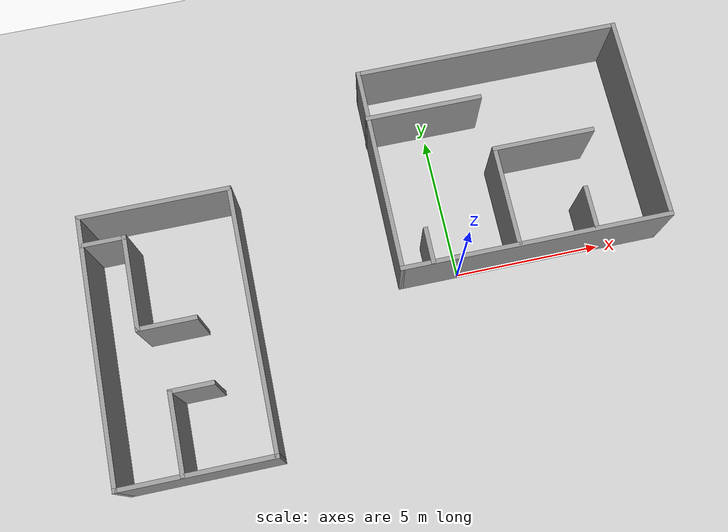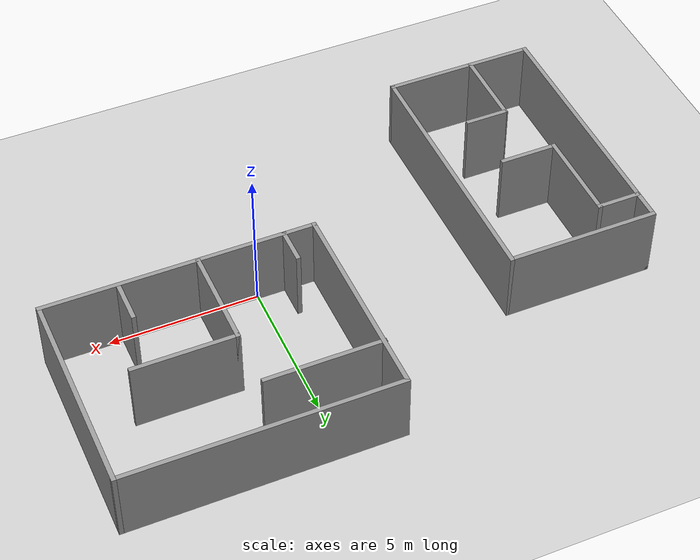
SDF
<sdf version='1.7'>
  <world name='default'>
    <light name='sun' type='directional'>
      <cast_shadows>1</cast_shadows>
      <pose>0 0 10 0 -0 0</pose>
      <diffuse>0.8 0.8 0.8 1</diffuse>
      <specular>0.2 0.2 0.2 1</specular>
      <attenuation>
        <range>1000</range>
        <constant>0.9</constant>
        <linear>0.01</linear>
        <quadratic>0.001</quadratic>
      </attenuation>
      <direction>-0.5 0.1 -0.9</direction>
      <spot>
        <inner_angle>0</inner_angle>
        <outer_angle>0</outer_angle>
        <falloff>0</falloff>
      </spot>
    </light>
    <model name='ground_plane'>
      <static>1</static>
      <link name='link'>
        <collision name='collision'>
          <geometry>
            <plane>
              <normal>0 0 1</normal>
              <size>100 100</size>
            </plane>
          </geometry>
          <surface>
            <friction>
              <ode>
                <mu>100</mu>
                <mu2>50</mu2>
              </ode>
              <torsional>
                <ode/>
              </torsional>
            </friction>
            <contact>
              <ode/>
            </contact>
            <bounce/>
          </surface>
          <max_contacts>10</max_contacts>
        </collision>
        <visual name='visual'>
          <cast_shadows>0</cast_shadows>
          <geometry>
            <plane>
              <normal>0 0 1</normal>
              <size>100 100</size>
            </plane>
          </geometry>
          <material>
            <script>
              <uri>file://media/materials/scripts/gazebo.material</uri>
              <name>Gazebo/Grey</name>
            </script>
          </material>
        </visual>
        <self_collide>0</self_collide>
        <enable_wind>0</enable_wind>
        <kinematic>0</kinematic>
      </link>
    </model>
    <gravity>0 0 -9.8</gravity>
    <magnetic_field>6e-06 2.3e-05 -4.2e-05</magnetic_field>
    <atmosphere type='adiabatic'/>
    <physics type='ode'>
      <max_step_size>0.001</max_step_size>
      <real_time_factor>1</real_time_factor>
      <real_time_update_rate>1000</real_time_update_rate>
    </physics>
    <scene>
      <ambient>0.4 0.4 0.4 1</ambient>
      <background>0.7 0.7 0.7 1</background>
      <shadows>1</shadows>
    </scene>
    <audio>
      <device>default</device>
    </audio>
    <wind/>
    <spherical_coordinates>
      <surface_model>EARTH_WGS84</surface_model>
      <latitude_deg>0</latitude_deg>
      <longitude_deg>0</longitude_deg>
      <elevation>0</elevation>
      <heading_deg>0</heading_deg>
    </spherical_coordinates>

    <model name='multi_house'>
      <pose>-2.5 1 0 0 -0 0</pose>
      <link name='Wall_0'>
        <collision name='Wall_0_Collision'>
          <geometry>
            <box>
              <size>9.15 0.15 2.5</size>
            </box>
          </geometry>
          <pose>0 0 1.25 0 -0 0</pose>
        </collision>
        <visual name='Wall_0_Visual'>
          <pose>0 0 1.25 0 -0 0</pose>
          <geometry>
            <box>
              <size>9.15 0.15 2.5</size>
            </box>
          </geometry>
          <material>
            <script>
              <uri>file://media/materials/scripts/gazebo.material</uri>
              <name>Gazebo/Grey</name>
            </script>
            <ambient>0 0 0 1</ambient>
          </material>
          <meta>
            <layer>0</layer>
          </meta>
        </visual>
        <pose>5 -1 0 0 -0 0</pose>
      </link>
      <link name='Wall_1'>
        <collision name='Wall_1_Collision'>
          <geometry>
            <box>
              <size>7.15 0.15 2.5</size>
            </box>
          </geometry>
          <pose>0 0 1.25 0 -0 0</pose>
        </collision>
        <visual name='Wall_1_Visual'>
          <pose>0 0 1.25 0 -0 0</pose>
          <geometry>
            <box>
              <size>7.15 0.15 2.5</size>
            </box>
          </geometry>
          <material>
            <script>
              <uri>file://media/materials/scripts/gazebo.material</uri>
              <name>Gazebo/Grey</name>
            </script>
            <ambient>0 0 0 1</ambient>
          </material>
          <meta>
            <layer>0</layer>
          </meta>
        </visual>
        <pose>9.5 2.5 0 0 -0 1.5708</pose>
      </link>
      <link name='Wall_10'>
        <collision name='Wall_10_Collision'>
          <geometry>
            <box>
              <size>1.25 0.15 2.5</size>
            </box>
          </geometry>
          <pose>0 0 1.25 0 -0 0</pose>
        </collision>
        <visual name='Wall_10_Visual'>
          <pose>0 0 1.25 0 -0 0</pose>
          <geometry>
            <box>
              <size>1.25 0.15 2.5</size>
            </box>
          </geometry>
          <material>
            <script>
              <uri>file://media/materials/scripts/gazebo.material</uri>
              <name>Gazebo/Grey</name>
            </script>
            <ambient>0 0 0 1</ambient>
          </material>
          <meta>
            <layer>0</layer>
          </meta>
        </visual>
        <pose>1.52455 -0.431333 0 0 -0 1.5708</pose>
      </link>
      <link name='Wall_12'>
        <collision name='Wall_12_Collision'>
          <geometry>
            <box>
              <size>3.5 0.15 2.5</size>
            </box>
          </geometry>
          <pose>0 0 1.25 0 -0 0</pose>
        </collision>
        <visual name='Wall_12_Visual'>
          <pose>0 0 1.25 0 -0 0</pose>
          <geometry>
            <box>
              <size>3.5 0.15 2.5</size>
            </box>
          </geometry>
          <material>
            <script>
              <uri>file://media/materials/scripts/gazebo.material</uri>
              <name>Gazebo/Grey</name>
            </script>
            <ambient>0 0 0 1</ambient>
          </material>
          <meta>
            <layer>0</layer>
          </meta>
        </visual>
        <pose>4.39274 0.716797 0 0 -0 1.5708</pose>
      </link>
      <link name='Wall_13'>
        <collision name='Wall_13_Collision'>
          <geometry>
            <box>
              <size>3.5 0.15 2.5</size>
            </box>
          </geometry>
          <pose>0 0 1.25 0 -0 0</pose>
        </collision>
        <visual name='Wall_13_Visual'>
          <pose>0 0 1.25 0 -0 0</pose>
          <geometry>
            <box>
              <size>3.5 0.15 2.5</size>
            </box>
          </geometry>
          <material>
            <script>
              <uri>file://media/materials/scripts/gazebo.material</uri>
              <name>Gazebo/Grey</name>
            </script>
            <ambient>0 0 0 1</ambient>
          </material>
          <meta>
            <layer>0</layer>
          </meta>
        </visual>
        <pose>6.06774 2.3918 0 0 -0 0</pose>
      </link>
      <link name='Wall_15'>
        <collision name='Wall_15_Collision'>
          <geometry>
            <box>
              <size>4 0.15 2.5</size>
            </box>
          </geometry>
          <pose>0 0 1.25 0 -0 0</pose>
        </collision>
        <visual name='Wall_15_Visual'>
          <pose>0 0 1.25 0 -0 0</pose>
          <geometry>
            <box>
              <size>4 0.15 2.5</size>
            </box>
          </geometry>
          <material>
            <script>
              <uri>file://media/materials/scripts/gazebo.material</uri>
              <name>Gazebo/Grey</name>
            </script>
            <ambient>0 0 0 1</ambient>
          </material>
          <meta>
            <layer>0</layer>
          </meta>
        </visual>
        <pose>2.4019 4.32935 0 0 -0 0</pose>
      </link>
      <link name='Wall_17'>
        <collision name='Wall_17_Collision'>
          <geometry>
            <box>
              <size>1.5 0.15 2.5</size>
            </box>
          </geometry>
          <pose>0 0 1.25 0 -0 0</pose>
        </collision>
        <visual name='Wall_17_Visual'>
          <pose>0 0 1.25 0 -0 0</pose>
          <geometry>
            <box>
              <size>1.5 0.15 2.5</size>
            </box>
          </geometry>
          <material>
            <script>
              <uri>file://media/materials/scripts/gazebo.material</uri>
              <name>Gazebo/Grey</name>
            </script>
            <ambient>0 0 0 1</ambient>
          </material>
          <meta>
            <layer>0</layer>
          </meta>
        </visual>
        <pose>6.99261 -0.257168 0 0 -0 1.5708</pose>
      </link>
      <link name='Wall_19'>
        <collision name='Wall_19_Collision'>
          <geometry>
            <box>
              <size>1.5 0.15 2.5</size>
            </box>
          </geometry>
          <pose>0 0 1.25 0 -0 0</pose>
        </collision>
        <visual name='Wall_19_Visual'>
          <pose>0 0 1.25 0 -0 0</pose>
          <geometry>
            <box>
              <size>1.5 0.15 2.5</size>
            </box>
          </geometry>
          <material>
            <script>
              <uri>file://media/materials/scripts/gazebo.material</uri>
              <name>Gazebo/Grey</name>
            </script>
            <ambient>0 0 0 1</ambient>
          </material>
          <meta>
            <layer>0</layer>
          </meta>
        </visual>
        <pose>-8.78993 1.88213 0 0 -0 0</pose>
      </link>
      <link name='Wall_2'>
        <collision name='Wall_2_Collision'>
          <geometry>
            <box>
              <size>9.15 0.15 2.5</size>
            </box>
          </geometry>
          <pose>0 0 1.25 0 -0 0</pose>
        </collision>
        <visual name='Wall_2_Visual'>
          <pose>0 0 1.25 0 -0 0</pose>
          <geometry>
            <box>
              <size>9.15 0.15 2.5</size>
            </box>
          </geometry>
          <material>
            <script>
              <uri>file://media/materials/scripts/gazebo.material</uri>
              <name>Gazebo/Grey</name>
            </script>
            <ambient>0 0 0 1</ambient>
          </material>
          <meta>
            <layer>0</layer>
          </meta>
        </visual>
        <pose>5 6 0 0 -0 3.14159</pose>
      </link>
      <link name='Wall_20'>
        <collision name='Wall_20_Collision'>
          <geometry>
            <box>
              <size>3.25 0.15 2.5</size>
            </box>
          </geometry>
          <pose>0 0 1.25 0 -0 0</pose>
        </collision>
        <visual name='Wall_20_Visual'>
          <pose>0 0 1.25 0 -0 0</pose>
          <geometry>
            <box>
              <size>3.25 0.15 2.5</size>
            </box>
          </geometry>
          <material>
            <script>
              <uri>file://media/materials/scripts/gazebo.material</uri>
              <name>Gazebo/Grey</name>
            </script>
            <ambient>0 0 0 1</ambient>
          </material>
          <meta>
            <layer>0</layer>
          </meta>
        </visual>
        <pose>-8.11493 0.332133 0 0 -0 -1.5708</pose>
      </link>
      <link name='Wall_21'>
        <collision name='Wall_21_Collision'>
          <geometry>
            <box>
              <size>2 0.15 2.5</size>
            </box>
          </geometry>
          <pose>0 0 1.25 0 -0 0</pose>
        </collision>
        <visual name='Wall_21_Visual'>
          <pose>0 0 1.25 0 -0 0</pose>
          <geometry>
            <box>
              <size>2 0.15 2.5</size>
            </box>
          </geometry>
          <material>
            <script>
              <uri>file://media/materials/scripts/gazebo.material</uri>
              <name>Gazebo/Grey</name>
            </script>
            <ambient>0 0 0 1</ambient>
          </material>
          <meta>
            <layer>0</layer>
          </meta>
        </visual>
        <pose>-7.18993 -1.21787 0 0 -0 0</pose>
      </link>
      <link name='Wall_23'>
        <collision name='Wall_23_Collision'>
          <geometry>
            <box>
              <size>2.75 0.15 2.5</size>
            </box>
          </geometry>
          <pose>0 0 1.25 0 -0 0</pose>
        </collision>
        <visual name='Wall_23_Visual'>
          <pose>0 0 1.25 0 -0 0</pose>
          <geometry>
            <box>
              <size>2.75 0.15 2.5</size>
            </box>
          </geometry>
          <material>
            <script>
              <uri>file://media/materials/scripts/gazebo.material</uri>
              <name>Gazebo/Grey</name>
            </script>
            <ambient>0 0 0 1</ambient>
          </material>
          <meta>
            <layer>0</layer>
          </meta>
        </visual>
        <pose>-7.41538 -4.67956 0 0 -0 1.5708</pose>
      </link>
      <link name='Wall_24'>
        <collision name='Wall_24_Collision'>
          <geometry>
            <box>
              <size>1.5 0.15 2.5</size>
            </box>
          </geometry>
          <pose>0 0 1.25 0 -0 0</pose>
        </collision>
        <visual name='Wall_24_Visual'>
          <pose>0 0 1.25 0 -0 0</pose>
          <geometry>
            <box>
              <size>1.5 0.15 2.5</size>
            </box>
          </geometry>
          <material>
            <script>
              <uri>file://media/materials/scripts/gazebo.material</uri>
              <name>Gazebo/Grey</name>
            </script>
            <ambient>0 0 0 1</ambient>
          </material>
          <meta>
            <layer>0</layer>
          </meta>
        </visual>
        <pose>-6.74038 -3.37956 0 0 -0 0</pose>
      </link>
      <link name='Wall_3'>
        <collision name='Wall_3_Collision'>
          <geometry>
            <box>
              <size>7.15 0.15 2.5</size>
            </box>
          </geometry>
          <pose>0 0 1.25 0 -0 0</pose>
        </collision>
        <visual name='Wall_3_Visual'>
          <pose>0 0 1.25 0 -0 0</pose>
          <geometry>
            <box>
              <size>7.15 0.15 2.5</size>
            </box>
          </geometry>
          <material>
            <script>
              <uri>file://media/materials/scripts/gazebo.material</uri>
              <name>Gazebo/Grey</name>
            </script>
            <ambient>0 0 0 1</ambient>
          </material>
          <meta>
            <layer>0</layer>
          </meta>
        </visual>
        <pose>0.5 2.5 0 0 -0 -1.5708</pose>
      </link>
      <link name='Wall_5'>
        <collision name='Wall_5_Collision'>
          <geometry>
            <box>
              <size>9 0.15 2.5</size>
            </box>
          </geometry>
          <pose>0 0 1.25 0 -0 0</pose>
        </collision>
        <visual name='Wall_5_Visual'>
          <pose>0 0 1.25 0 -0 0</pose>
          <geometry>
            <box>
              <size>9 0.15 2.5</size>
            </box>
          </geometry>
          <material>
            <script>
              <uri>file://media/materials/scripts/gazebo.material</uri>
              <name>Gazebo/Grey</name>
            </script>
            <ambient>0 0 0 1</ambient>
          </material>
          <meta>
            <layer>0</layer>
          </meta>
        </visual>
        <pose>-4.5 -1.575 0 0 -0 -1.5708</pose>
      </link>
      <link name='Wall_6'>
        <collision name='Wall_6_Collision'>
          <geometry>
            <box>
              <size>5.15 0.15 2.5</size>
            </box>
          </geometry>
          <pose>0 0 1.25 0 -0 0</pose>
        </collision>
        <visual name='Wall_6_Visual'>
          <pose>0 0 1.25 0 -0 0</pose>
          <geometry>
            <box>
              <size>5.15 0.15 2.5</size>
            </box>
          </geometry>
          <material>
            <script>
              <uri>file://media/materials/scripts/gazebo.material</uri>
              <name>Gazebo/Grey</name>
            </script>
            <ambient>0 0 0 1</ambient>
          </material>
          <meta>
            <layer>0</layer>
          </meta>
        </visual>
        <pose>-7 -6 0 0 -0 3.14159</pose>
      </link>
      <link name='Wall_7'>
        <collision name='Wall_7_Collision'>
          <geometry>
            <box>
              <size>9 0.15 2.5</size>
            </box>
          </geometry>
          <pose>0 0 1.25 0 -0 0</pose>
        </collision>
        <visual name='Wall_7_Visual'>
          <pose>0 0 1.25 0 -0 0</pose>
          <geometry>
            <box>
              <size>9 0.15 2.5</size>
            </box>
          </geometry>
          <material>
            <script>
              <uri>file://media/materials/scripts/gazebo.material</uri>
              <name>Gazebo/Grey</name>
            </script>
            <ambient>0 0 0 1</ambient>
          </material>
          <meta>
            <layer>0</layer>
          </meta>
        </visual>
        <pose>-9.5 -1.575 0 0 -0 1.5708</pose>
      </link>
      <link name='Wall_8'>
        <collision name='Wall_8_Collision'>
          <geometry>
            <box>
              <size>5.15 0.15 2.5</size>
            </box>
          </geometry>
          <pose>0 0 1.25 0 -0 0</pose>
        </collision>
        <visual name='Wall_8_Visual'>
          <pose>0 0 1.25 0 -0 0</pose>
          <geometry>
            <box>
              <size>5.15 0.15 2.5</size>
            </box>
          </geometry>
          <material>
            <script>
              <uri>file://media/materials/scripts/gazebo.material</uri>
              <name>Gazebo/Grey</name>
            </script>
            <ambient>0 0 0 1</ambient>
          </material>
          <meta>
            <layer>0</layer>
          </meta>
        </visual>
        <pose>-7 2.85 0 0 -0 0</pose>
      </link>
      <static>1</static>
    </model>
  </world>
</sdf>
